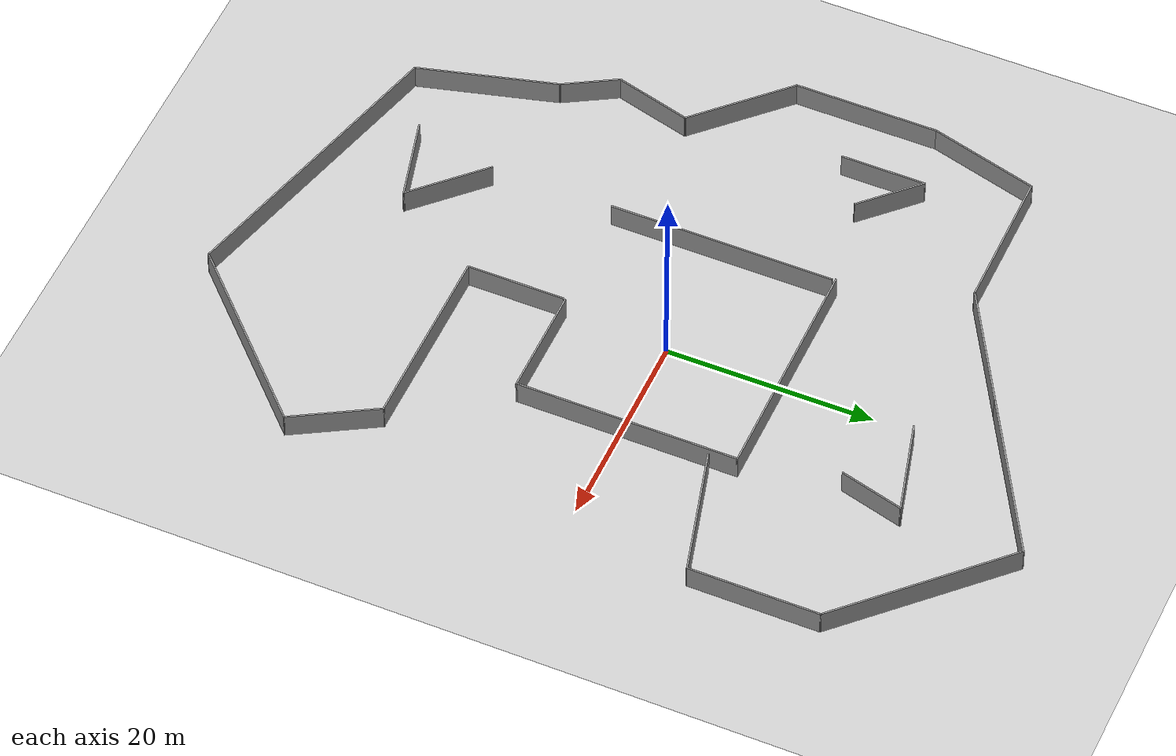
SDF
<sdf version="1.7">
 <world name="default">
  <light name="sun" type="directional">
   <pose>0 0 10 0 -0 0</pose>
   <diffuse>0.8 0.8 0.8 1</diffuse>
   <specular>0.2 0.2 0.2 1</specular>
   <attenuation>
    <range>1000</range>
    <constant>0.9</constant>
    <linear>0.01</linear>
    <quadratic>0.001</quadratic>
   </attenuation>
   <direction>-0.5 0.1 -0.9</direction>
   <spot><inner_angle>0</inner_angle><outer_angle>0</outer_angle><falloff>0</falloff></spot>
  </light>
  <model name="ground_plane">
   <static>1</static>
   <link name="link">
    <collision name="collision">
     <geometry><plane><normal>0 0 1</normal><size>100 100</size></plane></geometry>
     <surface><friction><ode><mu>100</mu><mu2>50</mu2></ode></friction></surface>
    </collision>
    <visual name="visual">
     <cast_shadows>0</cast_shadows>
     <geometry><plane><normal>0 0 1</normal><size>100 100</size></plane></geometry>
     <material>
      <script><uri>file://media/materials/scripts/gazebo.material</uri><name>Gazebo/Grey</name></script>
     </material>
    </visual>
   </link>
  </model>
  <gravity>0 0 -9.8</gravity>
  <magnetic_field>6e-06 2.3e-05 -4.2e-05</magnetic_field>
  <atmosphere type="adiabatic"/>
  <physics type="ode">
   <max_step_size>0.001</max_step_size>
   <real_time_factor>1</real_time_factor>
   <real_time_update_rate>1000</real_time_update_rate>
  </physics>
  <scene><ambient>0.4 0.4 0.4 1</ambient><background>0.7 0.7 0.7 1</background><shadows>1</shadows></scene>
  <audio><device>default</device></audio>
  <spherical_coordinates>
   <surface_model>EARTH_WGS84</surface_model>
   <latitude_deg>0</latitude_deg>
   <longitude_deg>0</longitude_deg>
   <elevation>0</elevation>
   <heading_deg>0</heading_deg>
  </spherical_coordinates>
  <model name="Untitled8">
   <pose>-4.21858 -1.64091 0 0 -0 0</pose>
   <link name="Wall_10">
    <collision name="Wall_10_Collision">
     <geometry><box><size>18.25 0.15 2.5</size></box></geometry>
     <pose>0 0 1.25 0 -0 0</pose>
    </collision>
    <visual name="Wall_10_Visual">
     <pose>0 0 1.25 0 -0 0</pose>
     <geometry><box><size>18.25 0.15 2.5</size></box></geometry>
     <material>
      <script><uri>file://media/materials/scripts/gazebo.material</uri><name>Gazebo/Grey</name></script>
      <ambient>1 1 1 1</ambient>
     </material>
     <meta><layer>0</layer></meta>
    </visual>
    <pose>13.2824 -17.8901 0 0 -0 0</pose>
   </link>
   <link name="Wall_11">
    <collision name="Wall_11_Collision">
     <geometry><box><size>9 0.15 2.5</size></box></geometry>
     <pose>0 0 1.25 0 -0 0</pose>
    </collision>
    <visual name="Wall_11_Visual">
     <pose>0 0 1.25 0 -0 0</pose>
     <geometry><box><size>9 0.15 2.5</size></box></geometry>
     <material>
      <script><uri>file://media/materials/scripts/gazebo.material</uri><name>Gazebo/Grey</name></script>
      <ambient>1 1 1 1</ambient>
     </material>
     <meta><layer>0</layer></meta>
    </visual>
    <pose>24.5449 -21.7223 0 0 -0 -1.0472</pose>
   </link>
   <link name="Wall_12">
    <collision name="Wall_12_Collision">
     <geometry><box><size>20.5 0.15 2.5</size></box></geometry>
     <pose>0 0 1.25 0 -0 0</pose>
    </collision>
    <visual name="Wall_12_Visual">
     <pose>0 0 1.25 0 -0 0</pose>
     <geometry><box><size>20.5 0.15 2.5</size></box></geometry>
     <material>
      <script><uri>file://media/materials/scripts/gazebo.material</uri><name>Gazebo/Grey</name></script>
      <ambient>1 1 1 1</ambient>
     </material>
     <meta><layer>0</layer></meta>
    </visual>
    <pose>19.5626 -32.7493 0 0 -0 -2.35619</pose>
   </link>
   <link name="Wall_13">
    <collision name="Wall_13_Collision">
     <geometry><box><size>29.25 0.15 2.5</size></box></geometry>
     <pose>0 0 1.25 0 -0 0</pose>
    </collision>
    <visual name="Wall_13_Visual">
     <pose>0 0 1.25 0 -0 0</pose>
     <geometry><box><size>29.25 0.15 2.5</size></box></geometry>
     <material>
      <script><uri>file://media/materials/scripts/gazebo.material</uri><name>Gazebo/Grey</name></script>
      <ambient>1 1 1 1</ambient>
     </material>
     <meta><layer>0</layer></meta>
    </visual>
    <pose>-1.68642 -36.1783 0 0 -0 2.87979</pose>
   </link>
   <link name="Wall_14">
    <collision name="Wall_14_Collision">
     <geometry><box><size>13.75 0.15 2.5</size></box></geometry>
     <pose>0 0 1.25 0 -0 0</pose>
    </collision>
    <visual name="Wall_14_Visual">
     <pose>0 0 1.25 0 -0 0</pose>
     <geometry><box><size>13.75 0.15 2.5</size></box></geometry>
     <material>
      <script><uri>file://media/materials/scripts/gazebo.material</uri><name>Gazebo/Grey</name></script>
      <ambient>1 1 1 1</ambient>
     </material>
     <meta><layer>0</layer></meta>
    </visual>
    <pose>-17.5006 -25.8442 0 0 -0 1.8326</pose>
   </link>
   <link name="Wall_15">
    <collision name="Wall_15_Collision">
     <geometry><box><size>5.75 0.15 2.5</size></box></geometry>
     <pose>0 0 1.25 0 -0 0</pose>
    </collision>
    <visual name="Wall_15_Visual">
     <pose>0 0 1.25 0 -0 0</pose>
     <geometry><box><size>5.75 0.15 2.5</size></box></geometry>
     <material>
      <script><uri>file://media/materials/scripts/gazebo.material</uri><name>Gazebo/Grey</name></script>
      <ambient>1 1 1 1</ambient>
     </material>
     <meta><layer>0</layer></meta>
    </visual>
    <pose>-20.6606 -16.851 0 0 -0 2.0944</pose>
   </link>
   <link name="Wall_16">
    <collision name="Wall_16_Collision">
     <geometry><box><size>7.75 0.15 2.5</size></box></geometry>
     <pose>0 0 1.25 0 -0 0</pose>
    </collision>
    <visual name="Wall_16_Visual">
     <pose>0 0 1.25 0 -0 0</pose>
     <geometry><box><size>7.75 0.15 2.5</size></box></geometry>
     <material>
      <script><uri>file://media/materials/scripts/gazebo.material</uri><name>Gazebo/Grey</name></script>
      <ambient>1 1 1 1</ambient>
     </material>
     <meta><layer>0</layer></meta>
    </visual>
    <pose>-21.0771 -10.7556 0 0 -0 1.309</pose>
   </link>
   <link name="Wall_17">
    <collision name="Wall_17_Collision">
     <geometry><box><size>11.25 0.15 2.5</size></box></geometry>
     <pose>0 0 1.25 0 -0 0</pose>
    </collision>
    <visual name="Wall_17_Visual">
     <pose>0 0 1.25 0 -0 0</pose>
     <geometry><box><size>11.25 0.15 2.5</size></box></geometry>
     <material>
      <script><uri>file://media/materials/scripts/gazebo.material</uri><name>Gazebo/Grey</name></script>
      <ambient>1 1 1 1</ambient>
     </material>
     <meta><layer>0</layer></meta>
    </visual>
    <pose>-24.018 -3.16065 0 0 -0 2.35619</pose>
   </link>
   <link name="Wall_18">
    <collision name="Wall_18_Collision">
     <geometry><box><size>14 0.15 2.5</size></box></geometry>
     <pose>0 0 1.25 0 -0 0</pose>
    </collision>
    <visual name="Wall_18_Visual">
     <pose>0 0 1.25 0 -0 0</pose>
     <geometry><box><size>14 0.15 2.5</size></box></geometry>
     <material>
      <script><uri>file://media/materials/scripts/gazebo.material</uri><name>Gazebo/Grey</name></script>
      <ambient>1 1 1 1</ambient>
     </material>
     <meta><layer>0</layer></meta>
    </visual>
    <pose>-27.9424 7.6888 0 0 -0 1.5708</pose>
   </link>
   <link name="Wall_19">
    <collision name="Wall_19_Collision">
     <geometry><box><size>11 0.15 2.5</size></box></geometry>
     <pose>0 0 1.25 0 -0 0</pose>
    </collision>
    <visual name="Wall_19_Visual">
     <pose>0 0 1.25 0 -0 0</pose>
     <geometry><box><size>11 0.15 2.5</size></box></geometry>
     <material>
      <script><uri>file://media/materials/scripts/gazebo.material</uri><name>Gazebo/Grey</name></script>
      <ambient>1 1 1 1</ambient>
     </material>
     <meta><layer>0</layer></meta>
    </visual>
    <pose>-26.5383 19.8539 0 0 -0 1.309</pose>
   </link>
   <link name="Wall_20">
    <collision name="Wall_20_Collision">
     <geometry><box><size>14 0.15 2.5</size></box></geometry>
     <pose>0 0 1.25 0 -0 0</pose>
    </collision>
    <visual name="Wall_20_Visual">
     <pose>0 0 1.25 0 -0 0</pose>
     <geometry><box><size>14 0.15 2.5</size></box></geometry>
     <material>
      <script><uri>file://media/materials/scripts/gazebo.material</uri><name>Gazebo/Grey</name></script>
      <ambient>1 1 1 1</ambient>
     </material>
     <meta><layer>0</layer></meta>
    </visual>
    <pose>-18.2093 25.0941 0 0 -0 0</pose>
   </link>
   <link name="Wall_21">
    <collision name="Wall_21_Collision">
     <geometry><box><size>12.75 0.15 2.5</size></box></geometry>
     <pose>0 0 1.25 0 -0 0</pose>
    </collision>
    <visual name="Wall_21_Visual">
     <pose>0 0 1.25 0 -0 0</pose>
     <geometry><box><size>12.75 0.15 2.5</size></box></geometry>
     <material>
      <script><uri>file://media/materials/scripts/gazebo.material</uri><name>Gazebo/Grey</name></script>
      <ambient>1 1 1 1</ambient>
     </material>
     <meta><layer>0</layer></meta>
    </visual>
    <pose>-5.82829 28.2441 0 0 -0 0.523599</pose>
   </link>
   <link name="Wall_22">
    <collision name="Wall_22_Collision">
     <geometry><box><size>17.25 0.15 2.5</size></box></geometry>
     <pose>0 0 1.25 0 -0 0</pose>
    </collision>
    <visual name="Wall_22_Visual">
     <pose>0 0 1.25 0 -0 0</pose>
     <geometry><box><size>17.25 0.15 2.5</size></box></geometry>
     <material>
      <script><uri>file://media/materials/scripts/gazebo.material</uri><name>Gazebo/Grey</name></script>
      <ambient>1 1 1 1</ambient>
     </material>
     <meta><layer>0</layer></meta>
    </visual>
    <pose>7.03219 35.6691 0 0 -0 0.523599</pose>
   </link>
   <link name="Wall_23">
    <collision name="Wall_23_Collision">
     <geometry><box><size>19.25 0.15 2.5</size></box></geometry>
     <pose>0 0 1.25 0 -0 0</pose>
    </collision>
    <visual name="Wall_23_Visual">
     <pose>0 0 1.25 0 -0 0</pose>
     <geometry><box><size>19.25 0.15 2.5</size></box></geometry>
     <material>
      <script><uri>file://media/materials/scripts/gazebo.material</uri><name>Gazebo/Grey</name></script>
      <ambient>1 1 1 1</ambient>
     </material>
     <meta><layer>0</layer></meta>
    </visual>
    <pose>21.1896 33.1912 0 0 -0 -0.785398</pose>
   </link>
   <link name="Wall_24">
    <collision name="Wall_24_Collision">
     <geometry><box><size>12.75 0.15 2.5</size></box></geometry>
     <pose>0 0 1.25 0 -0 0</pose>
    </collision>
    <visual name="Wall_24_Visual">
     <pose>0 0 1.25 0 -0 0</pose>
     <geometry><box><size>12.75 0.15 2.5</size></box></geometry>
     <material>
      <script><uri>file://media/materials/scripts/gazebo.material</uri><name>Gazebo/Grey</name></script>
      <ambient>1 1 1 1</ambient>
     </material>
     <meta><layer>0</layer></meta>
    </visual>
    <pose>27.9424 20.1384 0 0 -0 -1.5708</pose>
   </link>
   <link name="Wall_25">
    <collision name="Wall_25_Collision">
     <geometry><box><size>13 0.15 2.5</size></box></geometry>
     <pose>0 0 1.25 0 -0 0</pose>
    </collision>
    <visual name="Wall_25_Visual">
     <pose>0 0 1.25 0 -0 0</pose>
     <geometry><box><size>13 0.15 2.5</size></box></geometry>
     <material>
      <script><uri>file://media/materials/scripts/gazebo.material</uri><name>Gazebo/Grey</name></script>
      <ambient>1 1 1 1</ambient>
     </material>
     <meta><layer>0</layer></meta>
    </visual>
    <pose>21.7364 12.1754 0 0 -0 -2.87979</pose>
   </link>
   <link name="Wall_27">
    <collision name="Wall_27_Collision">
     <geometry><box><size>8.75 0.15 2.5</size></box></geometry>
     <pose>0 0 1.25 0 -0 0</pose>
    </collision>
    <visual name="Wall_27_Visual">
     <pose>0 0 1.25 0 -0 0</pose>
     <geometry><box><size>8.75 0.15 2.5</size></box></geometry>
     <material>
      <script><uri>file://media/materials/scripts/gazebo.material</uri><name>Gazebo/Grey</name></script>
      <ambient>1 1 1 1</ambient>
     </material>
     <meta><layer>0</layer></meta>
    </visual>
    <pose>-4.44058 -23.8764 0 0 -0 -0.785398</pose>
   </link>
   <link name="Wall_28">
    <collision name="Wall_28_Collision">
     <geometry><box><size>8.5 0.15 2.5</size></box></geometry>
     <pose>0 0 1.25 0 -0 0</pose>
    </collision>
    <visual name="Wall_28_Visual">
     <pose>0 0 1.25 0 -0 0</pose>
     <geometry><box><size>8.5 0.15 2.5</size></box></geometry>
     <material>
      <script><uri>file://media/materials/scripts/gazebo.material</uri><name>Gazebo/Grey</name></script>
      <ambient>1 1 1 1</ambient>
     </material>
     <meta><layer>0</layer></meta>
    </visual>
    <pose>-5.43276 -27.9976 0 0 -0 -2.87979</pose>
   </link>
   <link name="Wall_3">
    <collision name="Wall_3_Collision">
     <geometry><box><size>21.75 0.15 2.5</size></box></geometry>
     <pose>0 0 1.25 0 -0 0</pose>
    </collision>
    <visual name="Wall_3_Visual">
     <pose>0 0 1.25 0 -0 0</pose>
     <geometry><box><size>21.75 0.15 2.5</size></box></geometry>
     <material>
      <script><uri>file://media/materials/scripts/gazebo.material</uri><name>Gazebo/Grey</name></script>
      <ambient>1 1 1 1</ambient>
     </material>
     <meta><layer>0</layer></meta>
    </visual>
    <pose>-7.55818 1.90166 0 0 -0 -1.5708</pose>
   </link>
   <link name="Wall_30">
    <collision name="Wall_30_Collision">
     <geometry><box><size>8.25 0.15 2.5</size></box></geometry>
     <pose>0 0 1.25 0 -0 0</pose>
    </collision>
    <visual name="Wall_30_Visual">
     <pose>0 0 1.25 0 -0 0</pose>
     <geometry><box><size>8.25 0.15 2.5</size></box></geometry>
     <material>
      <script><uri>file://media/materials/scripts/gazebo.material</uri><name>Gazebo/Grey</name></script>
      <ambient>1 1 1 1</ambient>
     </material>
     <meta><layer>0</layer></meta>
    </visual>
    <pose>-21.5502 12.0016 0 0 -0 1.5708</pose>
   </link>
   <link name="Wall_31">
    <collision name="Wall_31_Collision">
     <geometry><box><size>7 0.15 2.5</size></box></geometry>
     <pose>0 0 1.25 0 -0 0</pose>
    </collision>
    <visual name="Wall_31_Visual">
     <pose>0 0 1.25 0 -0 0</pose>
     <geometry><box><size>7 0.15 2.5</size></box></geometry>
     <material>
      <script><uri>file://media/materials/scripts/gazebo.material</uri><name>Gazebo/Grey</name></script>
      <ambient>1 1 1 1</ambient>
     </material>
     <meta><layer>0</layer></meta>
    </visual>
    <pose>-19.1284 13.6298 0 0 -0 -0.785398</pose>
   </link>
   <link name="Wall_33">
    <collision name="Wall_33_Collision">
     <geometry><box><size>9.5 0.15 2.5</size></box></geometry>
     <pose>0 0 1.25 0 -0 0</pose>
    </collision>
    <visual name="Wall_33_Visual">
     <pose>0 0 1.25 0 -0 0</pose>
     <geometry><box><size>9.5 0.15 2.5</size></box></geometry>
     <material>
      <script><uri>file://media/materials/scripts/gazebo.material</uri><name>Gazebo/Grey</name></script>
      <ambient>1 1 1 1</ambient>
     </material>
     <meta><layer>0</layer></meta>
    </visual>
    <pose>9.80496 27.1267 0 0 -0 0.261799</pose>
   </link>
   <link name="Wall_34">
    <collision name="Wall_34_Collision">
     <geometry><box><size>6.5 0.15 2.5</size></box></geometry>
     <pose>0 0 1.25 0 -0 0</pose>
    </collision>
    <visual name="Wall_34_Visual">
     <pose>0 0 1.25 0 -0 0</pose>
     <geometry><box><size>6.5 0.15 2.5</size></box></geometry>
     <material>
      <script><uri>file://media/materials/scripts/gazebo.material</uri><name>Gazebo/Grey</name></script>
      <ambient>1 1 1 1</ambient>
     </material>
     <meta><layer>0</layer></meta>
    </visual>
    <pose>13.4989 25.2699 0 0 -0 -1.8326</pose>
   </link>
   <link name="Wall_5">
    <collision name="Wall_5_Collision">
     <geometry><box><size>22.75 0.15 2.5</size></box></geometry>
     <pose>0 0 1.25 0 -0 0</pose>
    </collision>
    <visual name="Wall_5_Visual">
     <pose>0 0 1.25 0 -0 0</pose>
     <geometry><box><size>22.75 0.15 2.5</size></box></geometry>
     <material>
      <script><uri>file://media/materials/scripts/gazebo.material</uri><name>Gazebo/Grey</name></script>
      <ambient>1 1 1 1</ambient>
     </material>
     <meta><layer>0</layer></meta>
    </visual>
    <pose>3.64825 13.076 0 0 -0 0</pose>
   </link>
   <link name="Wall_6">
    <collision name="Wall_6_Collision">
     <geometry><box><size>21.5 0.15 2.5</size></box></geometry>
     <pose>0 0 1.25 0 -0 0</pose>
    </collision>
    <visual name="Wall_6_Visual">
     <pose>0 0 1.25 0 -0 0</pose>
     <geometry><box><size>21.5 0.15 2.5</size></box></geometry>
     <material>
      <script><uri>file://media/materials/scripts/gazebo.material</uri><name>Gazebo/Grey</name></script>
      <ambient>1 1 1 1</ambient>
     </material>
     <meta><layer>0</layer></meta>
    </visual>
    <pose>14.9482 2.40096 0 0 -0 -1.5708</pose>
   </link>
   <link name="Wall_7">
    <collision name="Wall_7_Collision">
     <geometry><box><size>10.75 0.15 2.5</size></box></geometry>
     <pose>0 0 1.25 0 -0 0</pose>
    </collision>
    <visual name="Wall_7_Visual">
     <pose>0 0 1.25 0 -0 0</pose>
     <geometry><box><size>10.75 0.15 2.5</size></box></geometry>
     <material>
      <script><uri>file://media/materials/scripts/gazebo.material</uri><name>Gazebo/Grey</name></script>
      <ambient>1 1 1 1</ambient>
     </material>
     <meta><layer>0</layer></meta>
    </visual>
    <pose>9.64825 -8.27404 0 0 -0 3.14159</pose>
   </link>
   <link name="Wall_9">
    <collision name="Wall_9_Collision">
     <geometry><box><size>9.5 0.15 2.5</size></box></geometry>
     <pose>0 0 1.25 0 -0 0</pose>
    </collision>
    <visual name="Wall_9_Visual">
     <pose>0 0 1.25 0 -0 0</pose>
     <geometry><box><size>9.5 0.15 2.5</size></box></geometry>
     <material>
      <script><uri>file://media/materials/scripts/gazebo.material</uri><name>Gazebo/Grey</name></script>
      <ambient>1 1 1 1</ambient>
     </material>
     <meta><layer>0</layer></meta>
    </visual>
    <pose>4.23243 -13.2151 0 0 -0 -1.5708</pose>
   </link>
   <static>1</static>
  </model>
 </world>
</sdf>
